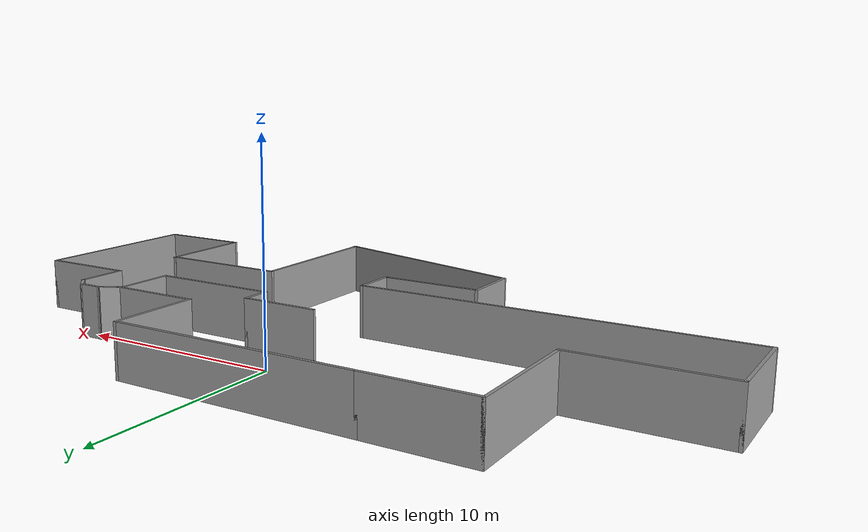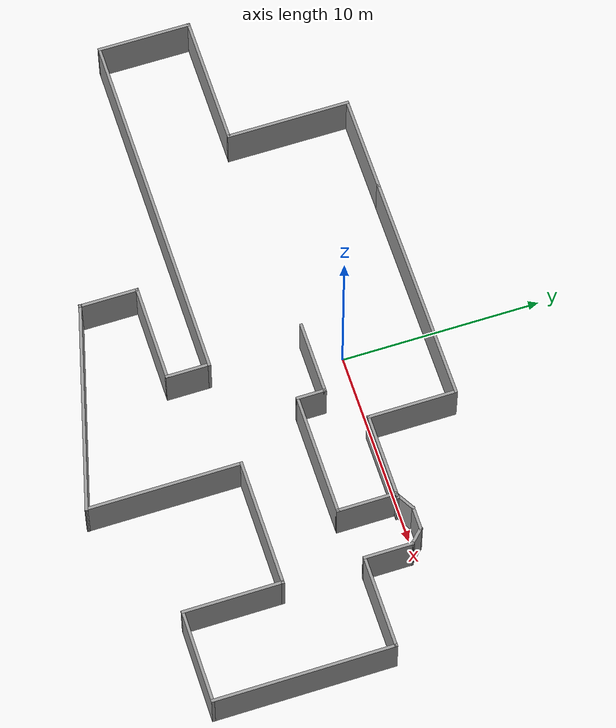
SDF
<?xml version='1.0'?>
<sdf version='1.6'>
    <physics type="ode">
      <ode>
        <solver>
          <type>world</type>
        </solver>
        <constraints>
          <contact_max_correcting_vel>0.1</contact_max_correcting_vel>
          <contact_surface_layer>0.0001</contact_surface_layer>
        </constraints>
      </ode>
      <max_step_size>0.1</max_step_size>
    </physics>
  <model name='world_model'>
    <pose frame=''>-1.49009 -5.01968 0 0 -0 0</pose>
    <link name='Wall_0'>
      <collision name='Wall_0_Collision'>
        <geometry>
          <box>
            <size>3.75 0.15 2.5</size>
          </box>
        </geometry>
        <pose frame=''>0 0 1.25 0 -0 0</pose>
      </collision>
      <visual name='Wall_0_Visual'>
        <pose frame=''>0 0 1.25 0 -0 0</pose>
        <geometry>
          <box>
            <size>3.75 0.15 2.5</size>
          </box>
        </geometry>
        <material>
          <script>
            <uri>file://media/materials/scripts/gazebo.material</uri>
            <name>Gazebo/Grey</name>
          </script>
          <ambient>1 1 1 1</ambient>
        </material>
      </visual>
      <pose frame=''>2.06574 3.31273 0 0 -0 0</pose>
    </link>
    <link name='Wall_1'>
      <collision name='Wall_1_Collision'>
        <geometry>
          <box>
            <size>1.5 0.15 2.5</size>
          </box>
        </geometry>
        <pose frame=''>0 0 1.25 0 -0 0</pose>
      </collision>
      <visual name='Wall_1_Visual'>
        <pose frame=''>0 0 1.25 0 -0 0</pose>
        <geometry>
          <box>
            <size>1.5 0.15 2.5</size>
          </box>
        </geometry>
        <material>
          <script>
            <uri>file://media/materials/scripts/gazebo.material</uri>
            <name>Gazebo/Grey</name>
          </script>
          <ambient>1 1 1 1</ambient>
        </material>
      </visual>
      <pose frame=''>3.86574 2.63773 0 0 0 -1.5708</pose>
    </link>
    <link name='Wall_10'>
      <collision name='Wall_10_Collision'>
        <geometry>
          <box>
            <size>4.75 0.15 2.5</size>
          </box>
        </geometry>
        <pose frame=''>0 0 1.25 0 -0 0</pose>
      </collision>
      <visual name='Wall_10_Visual'>
        <pose frame=''>0 0 1.25 0 -0 0</pose>
        <geometry>
          <box>
            <size>4.75 0.15 2.5</size>
          </box>
        </geometry>
        <material>
          <script>
            <uri>file://media/materials/scripts/gazebo.material</uri>
            <name>Gazebo/Grey</name>
          </script>
          <ambient>1 1 1 1</ambient>
        </material>
      </visual>
      <pose frame=''>14.9194 -6.43831 0 0 -0 3.14159</pose>
    </link>
    <link name='Wall_11'>
      <collision name='Wall_11_Collision'>
        <geometry>
          <box>
            <size>5 0.15 2.5</size>
          </box>
        </geometry>
        <pose frame=''>0 0 1.25 0 -0 0</pose>
      </collision>
      <visual name='Wall_11_Visual'>
        <pose frame=''>0 0 1.25 0 -0 0</pose>
        <geometry>
          <box>
            <size>5 0.15 2.5</size>
          </box>
        </geometry>
        <material>
          <script>
            <uri>file://media/materials/scripts/gazebo.material</uri>
            <name>Gazebo/Grey</name>
          </script>
          <ambient>1 1 1 1</ambient>
        </material>
      </visual>
      <pose frame=''>12.6194 -4.01331 0 0 -0 1.5708</pose>
    </link>
    <link name='Wall_12'>
      <collision name='Wall_12_Collision'>
        <geometry>
          <box>
            <size>6.5 0.15 2.5</size>
          </box>
        </geometry>
        <pose frame=''>0 0 1.25 0 -0 0</pose>
      </collision>
      <visual name='Wall_12_Visual'>
        <pose frame=''>0 0 1.25 0 -0 0</pose>
        <geometry>
          <box>
            <size>6.5 0.15 2.5</size>
          </box>
        </geometry>
        <material>
          <script>
            <uri>file://media/materials/scripts/gazebo.material</uri>
            <name>Gazebo/Grey</name>
          </script>
          <ambient>1 1 1 1</ambient>
        </material>
      </visual>
      <pose frame=''>9.44441 -1.58831 0 0 -0 3.14159</pose>
    </link>
    <link name='Wall_13'>
      <collision name='Wall_13_Collision'>
        <geometry>
          <box>
            <size>7.75 0.15 2.5</size>
          </box>
        </geometry>
        <pose frame=''>0 0 1.25 0 -0 0</pose>
      </collision>
      <visual name='Wall_13_Visual'>
        <pose frame=''>0 0 1.25 0 -0 0</pose>
        <geometry>
          <box>
            <size>7.75 0.15 2.5</size>
          </box>
        </geometry>
        <material>
          <script>
            <uri>file://media/materials/scripts/gazebo.material</uri>
            <name>Gazebo/Grey</name>
          </script>
          <ambient>1 1 1 1</ambient>
        </material>
      </visual>
      <pose frame=''>6.26941 -5.38831 0 0 0 -1.5708</pose>
    </link>
    <link name='Wall_14'>
      <collision name='Wall_14_Collision'>
        <geometry>
          <box>
            <size>10.75 0.15 2.5</size>
          </box>
        </geometry>
        <pose frame=''>0 0 1.25 0 -0 0</pose>
      </collision>
      <visual name='Wall_14_Visual'>
        <pose frame=''>0 0 1.25 0 -0 0</pose>
        <geometry>
          <box>
            <size>10.75 0.15 2.5</size>
          </box>
        </geometry>
        <material>
          <script>
            <uri>file://media/materials/scripts/gazebo.material</uri>
            <name>Gazebo/Grey</name>
          </script>
          <ambient>1 1 1 1</ambient>
        </material>
      </visual>
      <pose frame=''>1.15 -7.81657 0 0 -0 2.87979</pose>
    </link>
    <link name='Wall_15'>
      <collision name='Wall_15_Collision'>
        <geometry>
          <box>
            <size>3 0.15 2.5</size>
          </box>
        </geometry>
        <pose frame=''>0 0 1.25 0 -0 0</pose>
      </collision>
      <visual name='Wall_15_Visual'>
        <pose frame=''>0 0 1.25 0 -0 0</pose>
        <geometry>
          <box>
            <size>3 0.15 2.5</size>
          </box>
        </geometry>
        <material>
          <script>
            <uri>file://media/materials/scripts/gazebo.material</uri>
            <name>Gazebo/Grey</name>
          </script>
          <ambient>1 1 1 1</ambient>
        </material>
      </visual>
      <pose frame=''>-3.96941 -5.01983 0 0 -0 1.5708</pose>
    </link>
    <link name='Wall_16'>
      <collision name='Wall_16_Collision'>
        <geometry>
          <box>
            <size>5 0.15 2.5</size>
          </box>
        </geometry>
        <pose frame=''>0 0 1.25 0 -0 0</pose>
      </collision>
      <visual name='Wall_16_Visual'>
        <pose frame=''>0 0 1.25 0 -0 0</pose>
        <geometry>
          <box>
            <size>5 0.15 2.5</size>
          </box>
        </geometry>
        <material>
          <script>
            <uri>file://media/materials/scripts/gazebo.material</uri>
            <name>Gazebo/Grey</name>
          </script>
          <ambient>1 1 1 1</ambient>
        </material>
      </visual>
      <pose frame=''>-1.54441 -3.59483 0 0 -0 0</pose>
    </link>
    <link name='Wall_17'>
      <collision name='Wall_17_Collision'>
        <geometry>
          <box>
            <size>2.25 0.15 2.5</size>
          </box>
        </geometry>
        <pose frame=''>0 0 1.25 0 -0 0</pose>
      </collision>
      <visual name='Wall_17_Visual'>
        <pose frame=''>0 0 1.25 0 -0 0</pose>
        <geometry>
          <box>
            <size>2.25 0.15 2.5</size>
          </box>
        </geometry>
        <material>
          <script>
            <uri>file://media/materials/scripts/gazebo.material</uri>
            <name>Gazebo/Grey</name>
          </script>
          <ambient>1 1 1 1</ambient>
        </material>
      </visual>
      <pose frame=''>0.880594 -2.54483 0 0 -0 1.5708</pose>
    </link>
    <link name='Wall_18'>
      <collision name='Wall_18_Collision'>
        <geometry>
          <box>
            <size>18.25 0.15 2.5</size>
          </box>
        </geometry>
        <pose frame=''>0 0 1.25 0 -0 0</pose>
      </collision>
      <visual name='Wall_18_Visual'>
        <pose frame=''>0 0 1.25 0 -0 0</pose>
        <geometry>
          <box>
            <size>18.25 0.15 2.5</size>
          </box>
        </geometry>
        <material>
          <script>
            <uri>file://media/materials/scripts/gazebo.material</uri>
            <name>Gazebo/Grey</name>
          </script>
          <ambient>1 1 1 1</ambient>
        </material>
      </visual>
      <pose frame=''>-8.16941 -1.49483 0 0 -0 3.14159</pose>
    </link>
    <link name='Wall_19'>
      <collision name='Wall_19_Collision'>
        <geometry>
          <box>
            <size>4.75 0.15 2.5</size>
          </box>
        </geometry>
        <pose frame=''>0 0 1.25 0 -0 0</pose>
      </collision>
      <visual name='Wall_19_Visual'>
        <pose frame=''>0 0 1.25 0 -0 0</pose>
        <geometry>
          <box>
            <size>4.75 0.15 2.5</size>
          </box>
        </geometry>
        <material>
          <script>
            <uri>file://media/materials/scripts/gazebo.material</uri>
            <name>Gazebo/Grey</name>
          </script>
          <ambient>1 1 1 1</ambient>
        </material>
      </visual>
      <pose frame=''>-17.2194 0.805168 0 0 -0 1.5708</pose>
    </link>
    <link name='Wall_2'>
      <collision name='Wall_2_Collision'>
        <geometry>
          <box>
            <size>6.25 0.15 2.5</size>
          </box>
        </geometry>
        <pose frame=''>0 0 1.25 0 -0 0</pose>
      </collision>
      <visual name='Wall_2_Visual'>
        <pose frame=''>0 0 1.25 0 -0 0</pose>
        <geometry>
          <box>
            <size>6.25 0.15 2.5</size>
          </box>
        </geometry>
        <material>
          <script>
            <uri>file://media/materials/scripts/gazebo.material</uri>
            <name>Gazebo/Grey</name>
          </script>
          <ambient>1 1 1 1</ambient>
        </material>
      </visual>
      <pose frame=''>6.91574 1.96273 0 0 -0 0</pose>
    </link>
    <link name='Wall_20'>
      <collision name='Wall_20_Collision'>
        <geometry>
          <box>
            <size>6.75 0.15 2.5</size>
          </box>
        </geometry>
        <pose frame=''>0 0 1.25 0 -0 0</pose>
      </collision>
      <visual name='Wall_20_Visual'>
        <pose frame=''>0 0 1.25 0 -0 0</pose>
        <geometry>
          <box>
            <size>6.75 0.15 2.5</size>
          </box>
        </geometry>
        <material>
          <script>
            <uri>file://media/materials/scripts/gazebo.material</uri>
            <name>Gazebo/Grey</name>
          </script>
          <ambient>1 1 1 1</ambient>
        </material>
      </visual>
      <pose frame=''>-13.9194 3.10517 0 0 -0 0</pose>
    </link>
    <link name='Wall_21'>
      <collision name='Wall_21_Collision'>
        <geometry>
          <box>
            <size>6.25 0.15 2.5</size>
          </box>
        </geometry>
        <pose frame=''>0 0 1.25 0 -0 0</pose>
      </collision>
      <visual name='Wall_21_Visual'>
        <pose frame=''>0 0 1.25 0 -0 0</pose>
        <geometry>
          <box>
            <size>6.25 0.15 2.5</size>
          </box>
        </geometry>
        <material>
          <script>
            <uri>file://media/materials/scripts/gazebo.material</uri>
            <name>Gazebo/Grey</name>
          </script>
          <ambient>1 1 1 1</ambient>
        </material>
      </visual>
      <pose frame=''>-10.6194 6.15517 0 0 -0 1.5708</pose>
    </link>
    <link name='Wall_22'>
      <collision name='Wall_22_Collision'>
        <geometry>
          <box>
            <size>5 0.15 2.5</size>
          </box>
        </geometry>
        <pose frame=''>0 0 1.25 0 -0 0</pose>
      </collision>
      <visual name='Wall_22_Visual'>
        <pose frame=''>0 0 1.25 0 -0 0</pose>
        <geometry>
          <box>
            <size>5 0.15 2.5</size>
          </box>
        </geometry>
        <material>
          <script>
            <uri>file://media/materials/scripts/gazebo.material</uri>
            <name>Gazebo/Grey</name>
          </script>
          <ambient>1 1 1 1</ambient>
        </material>
      </visual>
      <pose frame=''>-8.19441 9.20517 0 0 -0 0</pose>
    </link>
    <link name='Wall_23'>
      <collision name='Wall_23_Collision'>
        <geometry>
          <box>
            <size>11.75 0.15 2.5</size>
          </box>
        </geometry>
        <pose frame=''>0 0 1.25 0 -0 0</pose>
      </collision>
      <visual name='Wall_23_Visual'>
        <pose frame=''>0 0 1.25 0 -0 0</pose>
        <geometry>
          <box>
            <size>11.75 0.15 2.5</size>
          </box>
        </geometry>
        <material>
          <script>
            <uri>file://media/materials/scripts/gazebo.material</uri>
            <name>Gazebo/Grey</name>
          </script>
          <ambient>1 1 1 1</ambient>
        </material>
      </visual>
      <pose frame=''>0.030594 9.20517 0 0 -0 0</pose>
    </link>
    <link name='Wall_24'>
      <collision name='Wall_24_Collision'>
        <geometry>
          <box>
            <size>4.5 0.15 2.5</size>
          </box>
        </geometry>
        <pose frame=''>0 0 1.25 0 -0 0</pose>
      </collision>
      <visual name='Wall_24_Visual'>
        <pose frame=''>0 0 1.25 0 -0 0</pose>
        <geometry>
          <box>
            <size>4.5 0.15 2.5</size>
          </box>
        </geometry>
        <material>
          <script>
            <uri>file://media/materials/scripts/gazebo.material</uri>
            <name>Gazebo/Grey</name>
          </script>
          <ambient>1 1 1 1</ambient>
        </material>
      </visual>
      <pose frame=''>5.83059 7.03017 0 0 0 -1.5708</pose>
    </link>
    <link name='Wall_25'>
      <collision name='Wall_25_Collision'>
        <geometry>
          <box>
            <size>4.5 0.15 2.5</size>
          </box>
        </geometry>
        <pose frame=''>0 0 1.25 0 -0 0</pose>
      </collision>
      <visual name='Wall_25_Visual'>
        <pose frame=''>0 0 1.25 0 -0 0</pose>
        <geometry>
          <box>
            <size>4.5 0.15 2.5</size>
          </box>
        </geometry>
        <material>
          <script>
            <uri>file://media/materials/scripts/gazebo.material</uri>
            <name>Gazebo/Grey</name>
          </script>
          <ambient>1 1 1 1</ambient>
        </material>
      </visual>
      <pose frame=''>8.00559 4.85517 0 0 -0 0</pose>
    </link>
    <link name='Wall_3'>
      <collision name='Wall_3_Collision'>
        <geometry>
          <box>
            <size>3 0.15 2.5</size>
          </box>
        </geometry>
        <pose frame=''>0 0 1.25 0 -0 0</pose>
      </collision>
      <visual name='Wall_3_Visual'>
        <pose frame=''>0 0 1.25 0 -0 0</pose>
        <geometry>
          <box>
            <size>3 0.15 2.5</size>
          </box>
        </geometry>
        <material>
          <script>
            <uri>file://media/materials/scripts/gazebo.material</uri>
            <name>Gazebo/Grey</name>
          </script>
          <ambient>1 1 1 1</ambient>
        </material>
      </visual>
      <pose frame=''>9.96574 3.38773 0 0 -0 1.5708</pose>
    </link>
    <link name='Wall_4'>
      <collision name='Wall_4_Collision'>
        <geometry>
          <box>
            <size>1.25 0.15 2.5</size>
          </box>
        </geometry>
        <pose frame=''>0 0 1.25 0 -0 0</pose>
      </collision>
      <visual name='Wall_4_Visual'>
        <pose frame=''>0 0 1.25 0 -0 0</pose>
        <geometry>
          <box>
            <size>1.25 0.15 2.5</size>
          </box>
        </geometry>
        <material>
          <script>
            <uri>file://media/materials/scripts/gazebo.material</uri>
            <name>Gazebo/Grey</name>
          </script>
          <ambient>1 1 1 1</ambient>
        </material>
      </visual>
      <pose frame=''>10.4421 5.08773 0 0 -0 0.523599</pose>
    </link>
    <link name='Wall_5'>
      <collision name='Wall_5_Collision'>
        <geometry>
          <box>
            <size>1.25 0.15 2.5</size>
          </box>
        </geometry>
        <pose frame=''>0 0 1.25 0 -0 0</pose>
      </collision>
      <visual name='Wall_5_Visual'>
        <pose frame=''>0 0 1.25 0 -0 0</pose>
        <geometry>
          <box>
            <size>1.25 0.15 2.5</size>
          </box>
        </geometry>
        <material>
          <script>
            <uri>file://media/materials/scripts/gazebo.material</uri>
            <name>Gazebo/Grey</name>
          </script>
          <ambient>1 1 1 1</ambient>
        </material>
      </visual>
      <pose frame=''>11.4684 5.36273 0 0 -0 0</pose>
    </link>
    <link name='Wall_6'>
      <collision name='Wall_6_Collision'>
        <geometry>
          <box>
            <size>1 0.15 2.5</size>
          </box>
        </geometry>
        <pose frame=''>0 0 1.25 0 -0 0</pose>
      </collision>
      <visual name='Wall_6_Visual'>
        <pose frame=''>0 0 1.25 0 -0 0</pose>
        <geometry>
          <box>
            <size>1 0.15 2.5</size>
          </box>
        </geometry>
        <material>
          <script>
            <uri>file://media/materials/scripts/gazebo.material</uri>
            <name>Gazebo/Grey</name>
          </script>
          <ambient>1 1 1 1</ambient>
        </material>
      </visual>
      <pose frame=''>12.3189 5.06221 0 0 0 -0.785398</pose>
    </link>
    <link name='Wall_7'>
      <collision name='Wall_7_Collision'>
        <geometry>
          <box>
            <size>2.5 0.15 2.5</size>
          </box>
        </geometry>
        <pose frame=''>0 0 1.25 0 -0 0</pose>
      </collision>
      <visual name='Wall_7_Visual'>
        <pose frame=''>0 0 1.25 0 -0 0</pose>
        <geometry>
          <box>
            <size>2.5 0.15 2.5</size>
          </box>
        </geometry>
        <material>
          <script>
            <uri>file://media/materials/scripts/gazebo.material</uri>
            <name>Gazebo/Grey</name>
          </script>
          <ambient>1 1 1 1</ambient>
        </material>
      </visual>
      <pose frame=''>12.6194 3.58669 0 0 0 -1.5708</pose>
    </link>
    <link name='Wall_8'>
      <collision name='Wall_8_Collision'>
        <geometry>
          <box>
            <size>4.75 0.15 2.5</size>
          </box>
        </geometry>
        <pose frame=''>0 0 1.25 0 -0 0</pose>
      </collision>
      <visual name='Wall_8_Visual'>
        <pose frame=''>0 0 1.25 0 -0 0</pose>
        <geometry>
          <box>
            <size>4.75 0.15 2.5</size>
          </box>
        </geometry>
        <material>
          <script>
            <uri>file://media/materials/scripts/gazebo.material</uri>
            <name>Gazebo/Grey</name>
          </script>
          <ambient>1 1 1 1</ambient>
        </material>
      </visual>
      <pose frame=''>14.9194 2.41169 0 0 -0 0</pose>
    </link>
    <link name='Wall_9'>
      <collision name='Wall_9_Collision'>
        <geometry>
          <box>
            <size>9 0.15 2.5</size>
          </box>
        </geometry>
        <pose frame=''>0 0 1.25 0 -0 0</pose>
      </collision>
      <visual name='Wall_9_Visual'>
        <pose frame=''>0 0 1.25 0 -0 0</pose>
        <geometry>
          <box>
            <size>9 0.15 2.5</size>
          </box>
        </geometry>
        <material>
          <script>
            <uri>file://media/materials/scripts/gazebo.material</uri>
            <name>Gazebo/Grey</name>
          </script>
          <ambient>1 1 1 1</ambient>
        </material>
      </visual>
      <pose frame=''>17.2194 -2.01331 0 0 0 -1.5708</pose>
    </link>
    <static>1</static>
  </model>
</sdf>
